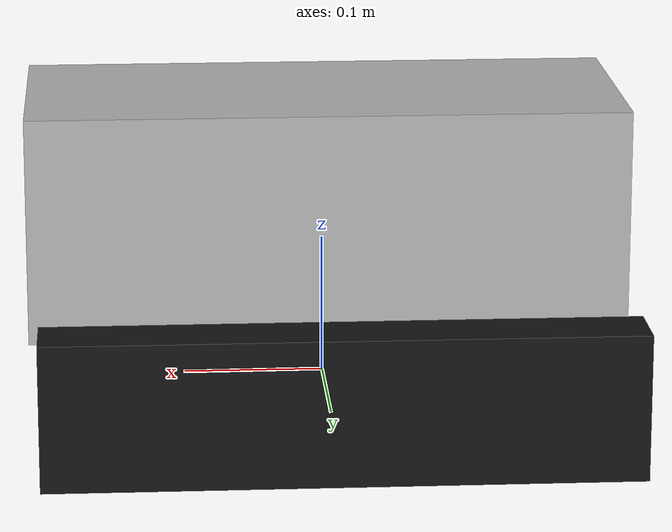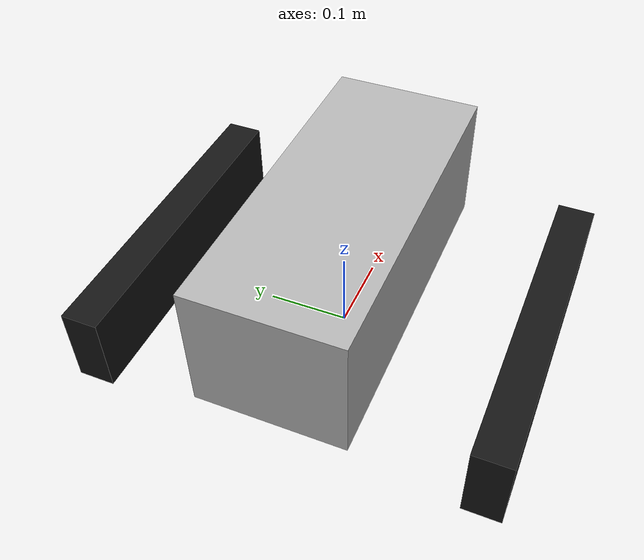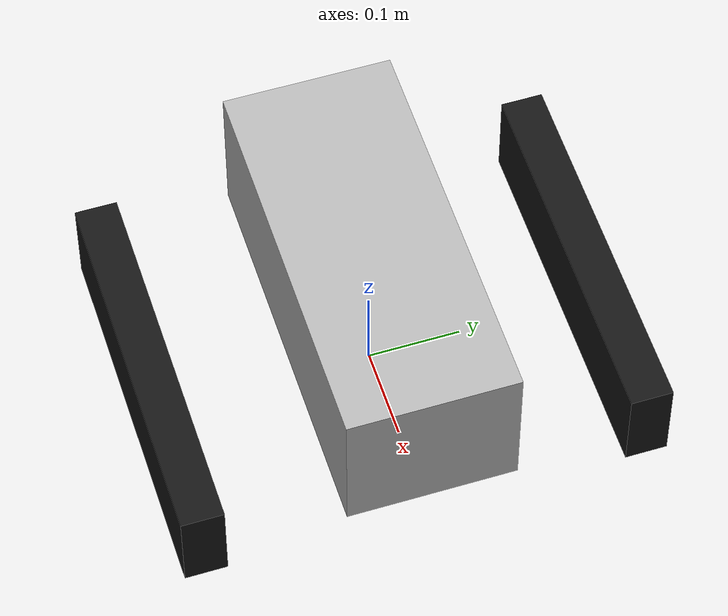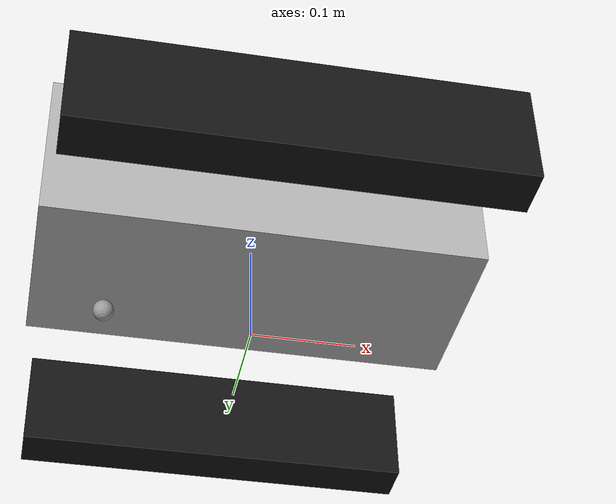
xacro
<?xml version="1.0"?>
<robot xmlns:xacro="http://www.ros.org/wiki/xacro">

  <xacro:include filename="inertial_macros.xacro"/>

  <!-- Main robot dimensions -->
  <xacro:property name="robot_length" value="0.42"/>
  <xacro:property name="robot_width" value="0.55"/>
  <xacro:property name="robot_height" value="0.35"/>

  <!-- Chassis -->
  <xacro:property name="chassis_length" value="0.42"/>
  <xacro:property name="chassis_width" value="0.18"/>
  <xacro:property name="chassis_height" value="0.16"/>
  <xacro:property name="chassis_center_z" value="0.13"/>

  <!-- Tracks -->
  <xacro:property name="track_length" value="0.40"/>
  <xacro:property name="track_width" value="0.045"/>
  <xacro:property name="track_height" value="0.10"/>
  <xacro:property name="track_center_y" value="0.235"/>
  <xacro:property name="track_center_z" value="0.05"/>

  <!-- Drive wheel placeholders for ros2_control -->
  <xacro:property name="wheel_radius" value="0.01606"/>
  <xacro:property name="wheel_length" value="0.03"/>
  <xacro:property name="wheel_mass" value="0.20"/>
  <xacro:property name="wheel_y_offset" value="0.235"/>

  <!-- Small rear support placeholder -->
  <xacro:property name="caster_wheel_radius" value="0.01"/>
  <xacro:property name="caster_wheel_mass" value="0.01"/>
  <xacro:property name="caster_wheel_offset_x" value="-0.14"/>
  <xacro:property name="caster_wheel_offset_z" value="${caster_wheel_radius}"/>

  <material name="body_gray">
    <color rgba="0.7 0.7 0.7 1"/>
  </material>

  <material name="track_black">
    <color rgba="0.08 0.08 0.08 1"/>
  </material>

  <material name="sensor_black">
    <color rgba="0.05 0.05 0.05 1"/>
  </material>

  <material name="wheel_blue">
    <color rgba="0.2 0.2 1.0 1"/>
  </material>

  <material name="black">
    <color rgba="0.05 0.05 0.05 1.0"/>
  </material>

  <material name="red">
    <color rgba="1.0 0.0 0.0 1.0"/>
  </material>

  <material name="blue">
    <color rgba="0.0 0.3 1.0 1.0"/>
  </material>

  <material name="white">
    <color rgba="1.0 1.0 1.0 1.0"/>
  </material>

  <material name="gray">
    <color rgba="0.6 0.6 0.6 1.0"/>
  </material>

  <material name="green">
    <color rgba="0.1 0.8 0.1 1.0"/>
  </material>

  <link name="base_link"/>

  <joint name="base_footprint_joint" type="fixed">
    <parent link="base_link"/>
    <child link="base_footprint"/>
    <origin xyz="0 0 0" rpy="0 0 0"/>
  </joint>

  <link name="base_footprint"/>

  <joint name="chassis_joint" type="fixed">
    <parent link="base_link"/>
    <child link="chassis"/>
    <origin xyz="0 0 0" rpy="0 0 0"/>
  </joint>

  <link name="chassis">
    <visual>
      <origin xyz="0 0 ${chassis_center_z}" rpy="0 0 0"/>
      <geometry>
        <box size="${chassis_length} ${chassis_width} ${chassis_height}"/>
      </geometry>
      <material name="body_gray"/>
    </visual>

    <collision>
      <origin xyz="0 0 ${chassis_center_z}" rpy="0 0 0"/>
      <geometry>
        <box size="${chassis_length} ${chassis_width} ${chassis_height}"/>
      </geometry>
    </collision>

    <xacro:inertial_box mass="8.0" x="${chassis_length}" y="${chassis_width}" z="${chassis_height}">
      <origin xyz="0 0 ${chassis_center_z}" rpy="0 0 0"/>
    </xacro:inertial_box>
  </link>

  <!-- Visual track links -->
  <joint name="left_track_visual_joint" type="fixed">
    <parent link="chassis"/>
    <child link="left_track_visual"/>
    <origin xyz="0 ${track_center_y} ${track_center_z}" rpy="0 0 0"/>
  </joint>

  <link name="left_track_visual">
    <visual>
      <geometry>
        <box size="${track_length} ${track_width} ${track_height}"/>
      </geometry>
      <material name="track_black"/>
    </visual>
  </link>

  <joint name="right_track_visual_joint" type="fixed">
    <parent link="chassis"/>
    <child link="right_track_visual"/>
    <origin xyz="0 ${-track_center_y} ${track_center_z}" rpy="0 0 0"/>
  </joint>

  <link name="right_track_visual">
    <visual>
      <geometry>
        <box size="${track_length} ${track_width} ${track_height}"/>
      </geometry>
      <material name="track_black"/>
    </visual>
  </link>

  <!-- Drive wheels used by ros2_control / diff drive -->
  <joint name="left_wheel_joint" type="continuous">
    <parent link="base_link"/>
    <child link="left_wheel"/>
    <origin xyz="0 ${wheel_y_offset} ${wheel_radius}" rpy="-${pi/2} 0 0"/>
    <axis xyz="0 0 1"/>
  </joint>

  <link name="left_wheel">
    <visual>
      <geometry>
        <cylinder radius="${wheel_radius}" length="${wheel_length}"/>
      </geometry>
      <material name="wheel_blue"/>
    </visual>
    <collision>
      <geometry>
        <sphere radius="${wheel_radius}"/>
      </geometry>
    </collision>
    <xacro:inertial_cylinder mass="${wheel_mass}" length="${wheel_length}" radius="${wheel_radius}">
      <origin xyz="0 0 0" rpy="0 0 0"/>
    </xacro:inertial_cylinder>
  </link>

  <joint name="right_wheel_joint" type="continuous">
    <parent link="base_link"/>
    <child link="right_wheel"/>
    <origin xyz="0 ${-wheel_y_offset} ${wheel_radius}" rpy="${pi/2} 0 0"/>
    <axis xyz="0 0 -1"/>
  </joint>

  <link name="right_wheel">
    <visual>
      <geometry>
        <cylinder radius="${wheel_radius}" length="${wheel_length}"/>
      </geometry>
      <material name="wheel_blue"/>
    </visual>
    <collision>
      <geometry>
        <sphere radius="${wheel_radius}"/>
      </geometry>
    </collision>
    <xacro:inertial_cylinder mass="${wheel_mass}" length="${wheel_length}" radius="${wheel_radius}">
      <origin xyz="0 0 0" rpy="0 0 0"/>
    </xacro:inertial_cylinder>
  </link>

  <joint name="caster_wheel_joint" type="fixed">
    <parent link="chassis"/>
    <child link="caster_wheel"/>
    <origin xyz="${caster_wheel_offset_x} 0 ${caster_wheel_offset_z}"/>
  </joint>

  <link name="caster_wheel">
    <visual>
      <geometry>
        <sphere radius="${caster_wheel_radius}"/>
      </geometry>
      <material name="gray"/>
    </visual>
    <collision>
      <geometry>
        <sphere radius="${caster_wheel_radius}"/>
      </geometry>
    </collision>
    <xacro:inertial_sphere mass="${caster_wheel_mass}" radius="${caster_wheel_radius}">
      <origin xyz="0 0 0" rpy="0 0 0"/>
    </xacro:inertial_sphere>
  </link>

</robot>
